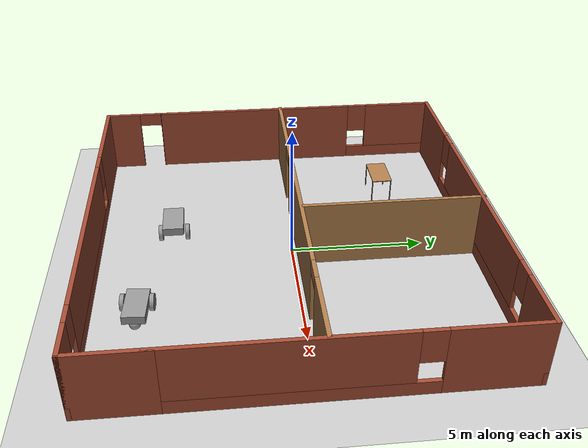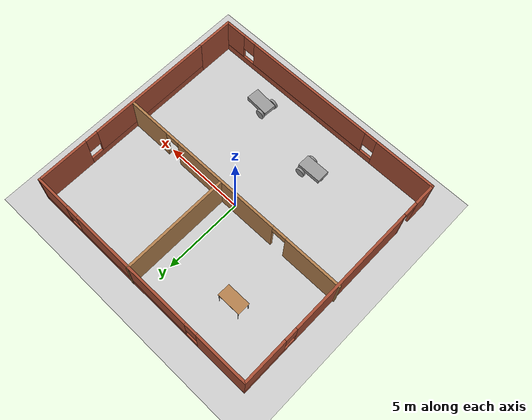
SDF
<sdf version="1.6">
 <world name="default">
  <light name="sun" type="directional">
   <pose>0 0 10 0 -0 0</pose>
   <diffuse>0.8 0.8 0.8 1</diffuse>
   <specular>0.2 0.2 0.2 1</specular>
   <attenuation>
    <range>1000</range>
    <constant>0.9</constant>
    <linear>0.01</linear>
    <quadratic>0.001</quadratic>
   </attenuation>
   <direction>-0.5 0.1 -0.9</direction>
  </light>
  <model name="ground_plane">
   <static>1</static>
   <link name="link">
    <collision name="collision">
     <geometry><plane><normal>0 0 1</normal><size>100 100</size></plane></geometry>
     <surface>
      <contact><collide_bitmask>65535</collide_bitmask></contact>
      <friction><ode><mu>100</mu><mu2>50</mu2></ode></friction>
     </surface>
    </collision>
    <visual name="visual">
     <cast_shadows>0</cast_shadows>
     <geometry><plane><normal>0 0 1</normal><size>100 100</size></plane></geometry>
     <material>
      <script><uri>file://media/materials/scripts/gazebo.material</uri><name>Gazebo/Grey</name></script>
     </material>
    </visual>
   </link>
  </model>
  <gravity>0 0 -9.8</gravity>
  <magnetic_field>6e-06 2.3e-05 -4.2e-05</magnetic_field>
  <atmosphere type="adiabatic"/>
  <physics name="default_physics" default="0" type="ode">
   <max_step_size>0.001</max_step_size>
   <real_time_factor>1</real_time_factor>
   <real_time_update_rate>1000</real_time_update_rate>
  </physics>
  <scene><ambient>0.4 0.4 0.4 1</ambient><background>0.7 0.7 0.7 1</background><shadows>1</shadows></scene>
  <audio><device>default</device></audio>
  <spherical_coordinates>
   <surface_model>EARTH_WGS84</surface_model>
   <latitude_deg>0</latitude_deg>
   <longitude_deg>0</longitude_deg>
   <elevation>0</elevation>
   <heading_deg>0</heading_deg>
  </spherical_coordinates>
  <model name="Floor_Building">
   <pose>0.125427 -0.176286 0 0 -0 0</pose>
   <link name="Wall_37">
    <pose>-7.51344 1.15966 0 0 -0 1.5708</pose>
    <visual name="Wall_37_Visual_0">
     <pose>-1.84038 0 1.25 0 -0 0</pose>
     <geometry><box><size>8.31924 0.15 2.5</size></box></geometry>
     <material>
      <script><uri>file://media/materials/scripts/gazebo.material</uri><name>Gazebo/Bricks</name></script>
      <ambient>0.333333 0.666667 0 1</ambient>
     </material>
     <meta><layer>0</layer></meta>
    </visual>
    <collision name="Wall_37_Collision_0">
     <geometry><box><size>8.31924 0.15 2.5</size></box></geometry>
     <pose>-1.84038 0 1.25 0 -0 0</pose>
    </collision>
    <visual name="Wall_37_Visual_1">
     <pose>4.15962 0 0.25 0 -0 0</pose>
     <geometry><box><size>3.68076 0.15 0.5</size></box></geometry>
     <material>
      <script><uri>file://media/materials/scripts/gazebo.material</uri><name>Gazebo/Bricks</name></script>
      <ambient>0.333333 0.666667 0 1</ambient>
     </material>
     <meta><layer>0</layer></meta>
    </visual>
    <collision name="Wall_37_Collision_1">
     <geometry><box><size>3.68076 0.15 0.5</size></box></geometry>
     <pose>4.15962 0 0.25 0 -0 0</pose>
    </collision>
    <visual name="Wall_37_Visual_2">
     <pose>4.55962 0 1.5 0 -0 0</pose>
     <geometry><box><size>2.88076 0.15 2</size></box></geometry>
     <material>
      <script><uri>file://media/materials/scripts/gazebo.material</uri><name>Gazebo/Bricks</name></script>
      <ambient>0.333333 0.666667 0 1</ambient>
     </material>
     <meta><layer>0</layer></meta>
    </visual>
    <collision name="Wall_37_Collision_2">
     <geometry><box><size>2.88076 0.15 2</size></box></geometry>
     <pose>4.55962 0 1.5 0 -0 0</pose>
    </collision>
    <visual name="Wall_37_Visual_3">
     <pose>2.71924 0 1.9 0 -0 0</pose>
     <geometry><box><size>0.8 0.15 1.2</size></box></geometry>
     <material>
      <script><uri>file://media/materials/scripts/gazebo.material</uri><name>Gazebo/Bricks</name></script>
      <ambient>0.333333 0.666667 0 1</ambient>
     </material>
     <meta><layer>0</layer></meta>
    </visual>
    <collision name="Wall_37_Collision_3">
     <geometry><box><size>0.8 0.15 1.2</size></box></geometry>
     <pose>2.71924 0 1.9 0 -0 0</pose>
    </collision>
   </link>
   <link name="Wall_38">
    <pose>0.036555 7.08466 0 0 -0 0</pose>
    <visual name="Wall_38_Visual_0">
     <pose>-5.95958 0 1.25 0 -0 0</pose>
     <geometry><box><size>3.33084 0.15 2.5</size></box></geometry>
     <material>
      <script><uri>file://media/materials/scripts/gazebo.material</uri><name>Gazebo/Bricks</name></script>
      <ambient>0.996078 0.47451 0.0196078 1</ambient>
     </material>
     <meta><layer>0</layer></meta>
    </visual>
    <collision name="Wall_38_Collision_0">
     <geometry><box><size>3.33084 0.15 2.5</size></box></geometry>
     <pose>-5.95958 0 1.25 0 -0 0</pose>
    </collision>
    <visual name="Wall_38_Visual_1">
     <pose>1.66542 0 0.25 0 -0 0</pose>
     <geometry><box><size>11.9192 0.15 0.5</size></box></geometry>
     <material>
      <script><uri>file://media/materials/scripts/gazebo.material</uri><name>Gazebo/Bricks</name></script>
      <ambient>0.996078 0.47451 0.0196078 1</ambient>
     </material>
     <meta><layer>0</layer></meta>
    </visual>
    <collision name="Wall_38_Collision_1">
     <geometry><box><size>11.9192 0.15 0.5</size></box></geometry>
     <pose>1.66542 0 0.25 0 -0 0</pose>
    </collision>
    <visual name="Wall_38_Visual_2">
     <pose>0.520773 0 1.5 0 -0 0</pose>
     <geometry><box><size>8.02987 0.15 2</size></box></geometry>
     <material>
      <script><uri>file://media/materials/scripts/gazebo.material</uri><name>Gazebo/Bricks</name></script>
      <ambient>0.996078 0.47451 0.0196078 1</ambient>
     </material>
     <meta><layer>0</layer></meta>
    </visual>
    <collision name="Wall_38_Collision_2">
     <geometry><box><size>8.02987 0.15 2</size></box></geometry>
     <pose>0.520773 0 1.5 0 -0 0</pose>
    </collision>
    <visual name="Wall_38_Visual_3">
     <pose>6.48035 0 1.5 0 -0 0</pose>
     <geometry><box><size>2.28929 0.15 2</size></box></geometry>
     <material>
      <script><uri>file://media/materials/scripts/gazebo.material</uri><name>Gazebo/Bricks</name></script>
      <ambient>0.996078 0.47451 0.0196078 1</ambient>
     </material>
     <meta><layer>0</layer></meta>
    </visual>
    <collision name="Wall_38_Collision_3">
     <geometry><box><size>2.28929 0.15 2</size></box></geometry>
     <pose>6.48035 0 1.5 0 -0 0</pose>
    </collision>
    <visual name="Wall_38_Visual_4">
     <pose>-3.89416 0 1.9 0 -0 0</pose>
     <geometry><box><size>0.8 0.15 1.2</size></box></geometry>
     <material>
      <script><uri>file://media/materials/scripts/gazebo.material</uri><name>Gazebo/Bricks</name></script>
      <ambient>0.996078 0.47451 0.0196078 1</ambient>
     </material>
     <meta><layer>0</layer></meta>
    </visual>
    <collision name="Wall_38_Collision_4">
     <geometry><box><size>0.8 0.15 1.2</size></box></geometry>
     <pose>-3.89416 0 1.9 0 -0 0</pose>
    </collision>
    <visual name="Wall_38_Visual_5">
     <pose>4.93571 0 1.9 0 -0 0</pose>
     <geometry><box><size>0.8 0.15 1.2</size></box></geometry>
     <material>
      <script><uri>file://media/materials/scripts/gazebo.material</uri><name>Gazebo/Bricks</name></script>
      <ambient>0.996078 0.47451 0.0196078 1</ambient>
     </material>
     <meta><layer>0</layer></meta>
    </visual>
    <collision name="Wall_38_Collision_5">
     <geometry><box><size>0.8 0.15 1.2</size></box></geometry>
     <pose>4.93571 0 1.9 0 -0 0</pose>
    </collision>
   </link>
   <link name="Wall_40">
    <pose>7.58655 1.15966 0 0 0 -1.5708</pose>
    <visual name="Wall_40_Visual_0">
     <pose>-4.36614 0 1.25 0 -0 0</pose>
     <geometry><box><size>3.26773 0.15 2.5</size></box></geometry>
     <material>
      <script><uri>file://media/materials/scripts/gazebo.material</uri><name>Gazebo/Bricks</name></script>
      <ambient>0.333333 0.666667 0 1</ambient>
     </material>
     <meta><layer>0</layer></meta>
    </visual>
    <collision name="Wall_40_Collision_0">
     <geometry><box><size>3.26773 0.15 2.5</size></box></geometry>
     <pose>-4.36614 0 1.25 0 -0 0</pose>
    </collision>
    <visual name="Wall_40_Visual_1">
     <pose>1.63386 0 0.25 0 -0 0</pose>
     <geometry><box><size>8.73227 0.15 0.5</size></box></geometry>
     <material>
      <script><uri>file://media/materials/scripts/gazebo.material</uri><name>Gazebo/Bricks</name></script>
      <ambient>0.333333 0.666667 0 1</ambient>
     </material>
     <meta><layer>0</layer></meta>
    </visual>
    <collision name="Wall_40_Collision_1">
     <geometry><box><size>8.73227 0.15 0.5</size></box></geometry>
     <pose>1.63386 0 0.25 0 -0 0</pose>
    </collision>
    <visual name="Wall_40_Visual_2">
     <pose>2.03386 0 1.5 0 -0 0</pose>
     <geometry><box><size>7.93227 0.15 2</size></box></geometry>
     <material>
      <script><uri>file://media/materials/scripts/gazebo.material</uri><name>Gazebo/Bricks</name></script>
      <ambient>0.333333 0.666667 0 1</ambient>
     </material>
     <meta><layer>0</layer></meta>
    </visual>
    <collision name="Wall_40_Collision_2">
     <geometry><box><size>7.93227 0.15 2</size></box></geometry>
     <pose>2.03386 0 1.5 0 -0 0</pose>
    </collision>
    <visual name="Wall_40_Visual_3">
     <pose>-2.33227 0 1.9 0 -0 0</pose>
     <geometry><box><size>0.8 0.15 1.2</size></box></geometry>
     <material>
      <script><uri>file://media/materials/scripts/gazebo.material</uri><name>Gazebo/Bricks</name></script>
      <ambient>0.333333 0.666667 0 1</ambient>
     </material>
     <meta><layer>0</layer></meta>
    </visual>
    <collision name="Wall_40_Collision_3">
     <geometry><box><size>0.8 0.15 1.2</size></box></geometry>
     <pose>-2.33227 0 1.9 0 -0 0</pose>
    </collision>
   </link>
   <link name="Wall_42">
    <pose>-7.51344 -5.94034 0 0 0 -1.5708</pose>
    <visual name="Wall_42_Visual_0">
     <pose>-1.16879 0 1.25 0 -0 0</pose>
     <geometry><box><size>0.162417 0.15 2.5</size></box></geometry>
     <material>
      <script><uri>file://media/materials/scripts/gazebo.material</uri><name>Gazebo/Bricks</name></script>
      <ambient>0.333333 0.666667 0 1</ambient>
     </material>
     <meta><layer>0</layer></meta>
    </visual>
    <collision name="Wall_42_Collision_0">
     <geometry><box><size>0.162417 0.15 2.5</size></box></geometry>
     <pose>-1.16879 0 1.25 0 -0 0</pose>
    </collision>
    <visual name="Wall_42_Visual_1">
     <pose>0.531208 0 1.25 0 -0 0</pose>
     <geometry><box><size>1.43758 0.15 2.5</size></box></geometry>
     <material>
      <script><uri>file://media/materials/scripts/gazebo.material</uri><name>Gazebo/Bricks</name></script>
      <ambient>0.333333 0.666667 0 1</ambient>
     </material>
     <meta><layer>0</layer></meta>
    </visual>
    <collision name="Wall_42_Collision_1">
     <geometry><box><size>1.43758 0.15 2.5</size></box></geometry>
     <pose>0.531208 0 1.25 0 -0 0</pose>
    </collision>
    <visual name="Wall_42_Visual_2">
     <pose>-0.637583 0 2.25 0 -0 0</pose>
     <geometry><box><size>0.9 0.15 0.5</size></box></geometry>
     <material>
      <script><uri>file://media/materials/scripts/gazebo.material</uri><name>Gazebo/Bricks</name></script>
      <ambient>0.333333 0.666667 0 1</ambient>
     </material>
     <meta><layer>0</layer></meta>
    </visual>
    <collision name="Wall_42_Collision_2">
     <geometry><box><size>0.9 0.15 0.5</size></box></geometry>
     <pose>-0.637583 0 2.25 0 -0 0</pose>
    </collision>
   </link>
   <link name="Wall_43">
    <pose>0.036555 -7.11534 0 0 -0 0</pose>
    <visual name="Wall_43_Visual_0">
     <pose>-5.69574 0 1.25 0 -0 0</pose>
     <geometry><box><size>3.85852 0.15 2.5</size></box></geometry>
     <material>
      <script><uri>file://media/materials/scripts/gazebo.material</uri><name>Gazebo/Bricks</name></script>
      <ambient>0.333333 0.666667 0 1</ambient>
     </material>
     <meta><layer>0</layer></meta>
    </visual>
    <collision name="Wall_43_Collision_0">
     <geometry><box><size>3.85852 0.15 2.5</size></box></geometry>
     <pose>-5.69574 0 1.25 0 -0 0</pose>
    </collision>
    <visual name="Wall_43_Visual_1">
     <pose>1.92926 0 0.25 0 -0 0</pose>
     <geometry><box><size>11.3915 0.15 0.5</size></box></geometry>
     <material>
      <script><uri>file://media/materials/scripts/gazebo.material</uri><name>Gazebo/Bricks</name></script>
      <ambient>0.333333 0.666667 0 1</ambient>
     </material>
     <meta><layer>0</layer></meta>
    </visual>
    <collision name="Wall_43_Collision_1">
     <geometry><box><size>11.3915 0.15 0.5</size></box></geometry>
     <pose>1.92926 0 0.25 0 -0 0</pose>
    </collision>
    <visual name="Wall_43_Visual_2">
     <pose>1.20676 0 1.5 0 -0 0</pose>
     <geometry><box><size>8.34648 0.15 2</size></box></geometry>
     <material>
      <script><uri>file://media/materials/scripts/gazebo.material</uri><name>Gazebo/Bricks</name></script>
      <ambient>0.333333 0.666667 0 1</ambient>
     </material>
     <meta><layer>0</layer></meta>
    </visual>
    <collision name="Wall_43_Collision_2">
     <geometry><box><size>8.34648 0.15 2</size></box></geometry>
     <pose>1.20676 0 1.5 0 -0 0</pose>
    </collision>
    <visual name="Wall_43_Visual_3">
     <pose>6.9025 0 1.5 0 -0 0</pose>
     <geometry><box><size>1.445 0.15 2</size></box></geometry>
     <material>
      <script><uri>file://media/materials/scripts/gazebo.material</uri><name>Gazebo/Bricks</name></script>
      <ambient>0.333333 0.666667 0 1</ambient>
     </material>
     <meta><layer>0</layer></meta>
    </visual>
    <collision name="Wall_43_Collision_3">
     <geometry><box><size>1.445 0.15 2</size></box></geometry>
     <pose>6.9025 0 1.5 0 -0 0</pose>
    </collision>
    <visual name="Wall_43_Visual_4">
     <pose>-3.36648 0 1.9 0 -0 0</pose>
     <geometry><box><size>0.8 0.15 1.2</size></box></geometry>
     <material>
      <script><uri>file://media/materials/scripts/gazebo.material</uri><name>Gazebo/Bricks</name></script>
      <ambient>0.333333 0.666667 0 1</ambient>
     </material>
     <meta><layer>0</layer></meta>
    </visual>
    <collision name="Wall_43_Collision_4">
     <geometry><box><size>0.8 0.15 1.2</size></box></geometry>
     <pose>-3.36648 0 1.9 0 -0 0</pose>
    </collision>
    <visual name="Wall_43_Visual_5">
     <pose>5.78 0 1.9 0 -0 0</pose>
     <geometry><box><size>0.8 0.15 1.2</size></box></geometry>
     <material>
      <script><uri>file://media/materials/scripts/gazebo.material</uri><name>Gazebo/Bricks</name></script>
      <ambient>0.333333 0.666667 0 1</ambient>
     </material>
     <meta><layer>0</layer></meta>
    </visual>
    <collision name="Wall_43_Collision_5">
     <geometry><box><size>0.8 0.15 1.2</size></box></geometry>
     <pose>5.78 0 1.9 0 -0 0</pose>
    </collision>
   </link>
   <link name="Wall_44">
    <collision name="Wall_44_Collision">
     <geometry><box><size>2.75 0.15 2.5</size></box></geometry>
     <pose>0 0 1.25 0 -0 0</pose>
    </collision>
    <visual name="Wall_44_Visual">
     <pose>0 0 1.25 0 -0 0</pose>
     <geometry><box><size>2.75 0.15 2.5</size></box></geometry>
     <material>
      <script><uri>file://media/materials/scripts/gazebo.material</uri><name>Gazebo/Bricks</name></script>
      <ambient>0.333333 0.666667 0 1</ambient>
     </material>
     <meta><layer>0</layer></meta>
    </visual>
    <pose>7.58655 -5.81534 0 0 -0 1.5708</pose>
   </link>
   <link name="Wall_51">
    <pose>-0.036556 0.431378 0 0 -0 0</pose>
    <visual name="Wall_51_Visual_0">
     <pose>-5.78972 0 1.25 0 -0 0</pose>
     <geometry><box><size>3.67056 0.15 2.5</size></box></geometry>
     <material>
      <script><uri>file://media/materials/scripts/gazebo.material</uri><name>Gazebo/Wood</name></script>
      <ambient>0.435294 0.796078 0.67451 1</ambient>
     </material>
     <meta><layer>0</layer></meta>
    </visual>
    <collision name="Wall_51_Collision_0">
     <geometry><box><size>3.67056 0.15 2.5</size></box></geometry>
     <pose>-5.78972 0 1.25 0 -0 0</pose>
    </collision>
    <visual name="Wall_51_Visual_1">
     <pose>0.453168 0 1.25 0 -0 0</pose>
     <geometry><box><size>7.01522 0.15 2.5</size></box></geometry>
     <material>
      <script><uri>file://media/materials/scripts/gazebo.material</uri><name>Gazebo/Wood</name></script>
      <ambient>0.435294 0.796078 0.67451 1</ambient>
     </material>
     <meta><layer>0</layer></meta>
    </visual>
    <collision name="Wall_51_Collision_1">
     <geometry><box><size>7.01522 0.15 2.5</size></box></geometry>
     <pose>0.453168 0 1.25 0 -0 0</pose>
    </collision>
    <visual name="Wall_51_Visual_2">
     <pose>6.24289 0 1.25 0 -0 0</pose>
     <geometry><box><size>2.76422 0.15 2.5</size></box></geometry>
     <material>
      <script><uri>file://media/materials/scripts/gazebo.material</uri><name>Gazebo/Wood</name></script>
      <ambient>0.435294 0.796078 0.67451 1</ambient>
     </material>
     <meta><layer>0</layer></meta>
    </visual>
    <collision name="Wall_51_Collision_2">
     <geometry><box><size>2.76422 0.15 2.5</size></box></geometry>
     <pose>6.24289 0 1.25 0 -0 0</pose>
    </collision>
    <visual name="Wall_51_Visual_3">
     <pose>-3.50444 0 2.25 0 -0 0</pose>
     <geometry><box><size>0.9 0.15 0.5</size></box></geometry>
     <material>
      <script><uri>file://media/materials/scripts/gazebo.material</uri><name>Gazebo/Wood</name></script>
      <ambient>0.435294 0.796078 0.67451 1</ambient>
     </material>
     <meta><layer>0</layer></meta>
    </visual>
    <collision name="Wall_51_Collision_3">
     <geometry><box><size>0.9 0.15 0.5</size></box></geometry>
     <pose>-3.50444 0 2.25 0 -0 0</pose>
    </collision>
    <visual name="Wall_51_Visual_4">
     <pose>4.41078 0 2.25 0 -0 0</pose>
     <geometry><box><size>0.9 0.15 0.5</size></box></geometry>
     <material>
      <script><uri>file://media/materials/scripts/gazebo.material</uri><name>Gazebo/Wood</name></script>
      <ambient>0.435294 0.796078 0.67451 1</ambient>
     </material>
     <meta><layer>0</layer></meta>
    </visual>
    <collision name="Wall_51_Collision_4">
     <geometry><box><size>0.9 0.15 0.5</size></box></geometry>
     <pose>4.41078 0 2.25 0 -0 0</pose>
    </collision>
   </link>
   <link name="Wall_53">
    <collision name="Wall_53_Collision">
     <geometry><box><size>6.75 0.15 2.5</size></box></geometry>
     <pose>0 0 1.25 0 -0 0</pose>
    </collision>
    <visual name="Wall_53_Visual">
     <pose>0 0 1.25 0 -0 0</pose>
     <geometry><box><size>6.75 0.15 2.5</size></box></geometry>
     <material>
      <script><uri>file://media/materials/scripts/gazebo.material</uri><name>Gazebo/Wood</name></script>
      <ambient>0.435294 0.796078 0.67451 1</ambient>
     </material>
     <meta><layer>0</layer></meta>
    </visual>
    <pose>0.645275 3.81534 0 0 0 -1.5708</pose>
   </link>
   <static>1</static>
  </model>
  <model name="mobile_robot_1">
   <link name="link_0">
    <pose>0 0 0.5 0 -0 0</pose>
    <inertial>
     <mass>1</mass>
     <inertia>
      <ixx>0.166667</ixx>
      <ixy>0</ixy>
      <ixz>0</ixz>
      <iyy>0.166667</iyy>
      <iyz>0</iyz>
      <izz>0.166667</izz>
     </inertia>
    </inertial>
    <visual name="visual">
     <geometry><box><size>1.5 0.8 0.3</size></box></geometry>
     <material>
      <lighting>1</lighting>
      <script><uri>file://media/materials/scripts/gazebo.material</uri><name>Gazebo/Grey</name></script>
      <shader type="pixel"><normal_map>__default__</normal_map></shader>
      <ambient>0.3 0.3 0.3 1</ambient>
      <diffuse>0.7 0.7 0.7 1</diffuse>
      <specular>0.01 0.01 0.01 1</specular>
      <emissive>0 0 0 1</emissive>
     </material>
    </visual>
    <collision name="collision">
     <geometry><box><size>1.5 0.8 0.3</size></box></geometry>
     <surface>
      <friction>
       <ode><mu>1</mu><mu2>1</mu2><fdir1>0 0 0</fdir1><slip1>0</slip1><slip2>0</slip2></ode>
       <torsional>
        <coefficient>1</coefficient>
        <patch_radius>0</patch_radius>
        <surface_radius>0</surface_radius>
        <use_patch_radius>1</use_patch_radius>
        <ode><slip>0</slip></ode>
       </torsional>
      </friction>
      <bounce><restitution_coefficient>0</restitution_coefficient><threshold>1e+06</threshold></bounce>
      <contact>
       <collide_without_contact>0</collide_without_contact>
       <collide_without_contact_bitmask>1</collide_without_contact_bitmask>
       <collide_bitmask>1</collide_bitmask>
       <ode>
        <soft_cfm>0</soft_cfm>
        <soft_erp>0.2</soft_erp>
        <kp>1e+13</kp>
        <kd>1</kd>
        <max_vel>0.01</max_vel>
        <min_depth>0</min_depth>
       </ode>
       <bullet>
        <split_impulse>1</split_impulse>
        <split_impulse_penetration_threshold>-0.01</split_impulse_penetration_threshold>
        <soft_cfm>0</soft_cfm>
        <soft_erp>0.2</soft_erp>
        <kp>1e+13</kp>
        <kd>1</kd>
       </bullet>
      </contact>
     </surface>
    </collision>
   </link>
   <link name="link_1">
    <pose>0.45 0.540029 0.3 1.5707 -0 0</pose>
    <inertial>
     <mass>1</mass>
     <inertia><ixx>0.145833</ixx><ixy>0</ixy><ixz>0</ixz><iyy>0.145833</iyy><iyz>0</iyz><izz>0.125</izz></inertia>
    </inertial>
    <visual name="visual">
     <geometry><cylinder><radius>0.3</radius><length>0.15</length></cylinder></geometry>
     <material>
      <lighting>1</lighting>
      <script><uri>file://media/materials/scripts/gazebo.material</uri><name>Gazebo/Grey</name></script>
      <shader type="pixel"><normal_map>__default__</normal_map></shader>
      <ambient>0.3 0.3 0.3 1</ambient>
      <diffuse>0.7 0.7 0.7 1</diffuse>
      <specular>0.01 0.01 0.01 1</specular>
      <emissive>0 0 0 1</emissive>
     </material>
    </visual>
    <collision name="collision">
     <geometry><cylinder><radius>0.3</radius><length>0.15</length></cylinder></geometry>
     <surface>
      <friction>
       <ode><mu>1</mu><mu2>1</mu2><fdir1>0 0 0</fdir1><slip1>0</slip1><slip2>0</slip2></ode>
       <torsional>
        <coefficient>1</coefficient>
        <patch_radius>0</patch_radius>
        <surface_radius>0</surface_radius>
        <use_patch_radius>1</use_patch_radius>
        <ode><slip>0</slip></ode>
       </torsional>
      </friction>
      <bounce><restitution_coefficient>0</restitution_coefficient><threshold>1e+06</threshold></bounce>
      <contact>
       <collide_without_contact>0</collide_without_contact>
       <collide_without_contact_bitmask>1</collide_without_contact_bitmask>
       <collide_bitmask>1</collide_bitmask>
       <ode>
        <soft_cfm>0</soft_cfm>
        <soft_erp>0.2</soft_erp>
        <kp>1e+13</kp>
        <kd>1</kd>
        <max_vel>0.01</max_vel>
        <min_depth>0</min_depth>
       </ode>
       <bullet>
        <split_impulse>1</split_impulse>
        <split_impulse_penetration_threshold>-0.01</split_impulse_penetration_threshold>
        <soft_cfm>0</soft_cfm>
        <soft_erp>0.2</soft_erp>
        <kp>1e+13</kp>
        <kd>1</kd>
       </bullet>
      </contact>
     </surface>
    </collision>
   </link>
   <link name="link_1_clone">
    <pose>0.45 -0.475029 0.3 1.5707 -0 0</pose>
    <inertial>
     <mass>1</mass>
     <inertia><ixx>0.145833</ixx><ixy>0</ixy><ixz>0</ixz><iyy>0.145833</iyy><iyz>0</iyz><izz>0.125</izz></inertia>
    </inertial>
    <visual name="visual">
     <geometry><cylinder><radius>0.3</radius><length>0.15</length></cylinder></geometry>
     <material>
      <lighting>1</lighting>
      <script><uri>file://media/materials/scripts/gazebo.material</uri><name>Gazebo/Grey</name></script>
      <shader type="pixel"><normal_map>__default__</normal_map></shader>
      <ambient>0.3 0.3 0.3 1</ambient>
      <diffuse>0.7 0.7 0.7 1</diffuse>
      <specular>0.01 0.01 0.01 1</specular>
      <emissive>0 0 0 1</emissive>
     </material>
    </visual>
    <collision name="collision">
     <geometry><cylinder><radius>0.3</radius><length>0.15</length></cylinder></geometry>
     <surface>
      <friction>
       <ode><mu>1</mu><mu2>1</mu2><fdir1>0 0 0</fdir1><slip1>0</slip1><slip2>0</slip2></ode>
       <torsional>
        <coefficient>1</coefficient>
        <patch_radius>0</patch_radius>
        <surface_radius>0</surface_radius>
        <use_patch_radius>1</use_patch_radius>
        <ode><slip>0</slip></ode>
       </torsional>
      </friction>
      <bounce><restitution_coefficient>0</restitution_coefficient><threshold>1e+06</threshold></bounce>
      <contact>
       <collide_without_contact>0</collide_without_contact>
       <collide_without_contact_bitmask>1</collide_without_contact_bitmask>
       <collide_bitmask>1</collide_bitmask>
       <ode>
        <soft_cfm>0</soft_cfm>
        <soft_erp>0.2</soft_erp>
        <kp>1e+13</kp>
        <kd>1</kd>
        <max_vel>0.01</max_vel>
        <min_depth>0</min_depth>
       </ode>
       <bullet>
        <split_impulse>1</split_impulse>
        <split_impulse_penetration_threshold>-0.01</split_impulse_penetration_threshold>
        <soft_cfm>0</soft_cfm>
        <soft_erp>0.2</soft_erp>
        <kp>1e+13</kp>
        <kd>1</kd>
       </bullet>
      </contact>
     </surface>
    </collision>
   </link>
   <link name="link_2">
    <pose>-0.55 0 0.2 0 -0 0</pose>
    <inertial>
     <mass>1</mass>
     <inertia><ixx>0.1</ixx><ixy>0</ixy><ixz>0</ixz><iyy>0.1</iyy><iyz>0</iyz><izz>0.1</izz></inertia>
    </inertial>
    <visual name="visual">
     <geometry><sphere><radius>0.2</radius></sphere></geometry>
     <material>
      <lighting>1</lighting>
      <script><uri>file://media/materials/scripts/gazebo.material</uri><name>Gazebo/Grey</name></script>
      <shader type="pixel"><normal_map>__default__</normal_map></shader>
      <ambient>0.3 0.3 0.3 1</ambient>
      <diffuse>0.7 0.7 0.7 1</diffuse>
      <specular>0.01 0.01 0.01 1</specular>
      <emissive>0 0 0 1</emissive>
     </material>
    </visual>
    <collision name="collision">
     <geometry><sphere><radius>0.2</radius></sphere></geometry>
     <surface>
      <friction>
       <ode><mu>1</mu><mu2>1</mu2><fdir1>0 0 0</fdir1><slip1>0</slip1><slip2>0</slip2></ode>
       <torsional>
        <coefficient>1</coefficient>
        <patch_radius>0</patch_radius>
        <surface_radius>0</surface_radius>
        <use_patch_radius>1</use_patch_radius>
        <ode><slip>0</slip></ode>
       </torsional>
      </friction>
      <bounce><restitution_coefficient>0</restitution_coefficient><threshold>1e+06</threshold></bounce>
      <contact>
       <collide_without_contact>0</collide_without_contact>
       <collide_without_contact_bitmask>1</collide_without_contact_bitmask>
       <collide_bitmask>1</collide_bitmask>
       <ode>
        <soft_cfm>0</soft_cfm>
        <soft_erp>0.2</soft_erp>
        <kp>1e+13</kp>
        <kd>1</kd>
        <max_vel>0.01</max_vel>
        <min_depth>0</min_depth>
       </ode>
       <bullet>
        <split_impulse>1</split_impulse>
        <split_impulse_penetration_threshold>-0.01</split_impulse_penetration_threshold>
        <soft_cfm>0</soft_cfm>
        <soft_erp>0.2</soft_erp>
        <kp>1e+13</kp>
        <kd>1</kd>
       </bullet>
      </contact>
     </surface>
    </collision>
   </link>
   <joint name="link_0_JOINT_0" type="revolute">
    <parent>link_0</parent>
    <child>link_1</child>
    <axis>
     <xyz>0 0 1</xyz>
     <use_parent_model_frame>0</use_parent_model_frame>
     <limit>
      <lower>-1.79769e+308</lower>
      <upper>1.79769e+308</upper>
      <effort>-1</effort>
      <velocity>-1</velocity>
     </limit>
     <dynamics>
      <spring_reference>0</spring_reference>
      <spring_stiffness>0</spring_stiffness>
      <damping>0</damping>
     </dynamics>
    </axis>
    <physics>
     <ode><limit><cfm>0</cfm><erp>0.2</erp></limit><suspension><cfm>0</cfm><erp>0.2</erp></suspension></ode>
    </physics>
   </joint>
   <joint name="link_0_JOINT_1" type="revolute">
    <parent>link_0</parent>
    <child>link_1_clone</child>
    <axis>
     <xyz>0 0 1</xyz>
     <use_parent_model_frame>0</use_parent_model_frame>
     <limit>
      <lower>-1.79769e+308</lower>
      <upper>1.79769e+308</upper>
      <effort>-1</effort>
      <velocity>-1</velocity>
     </limit>
     <dynamics>
      <spring_reference>0</spring_reference>
      <spring_stiffness>0</spring_stiffness>
      <damping>0</damping>
     </dynamics>
    </axis>
    <physics>
     <ode><limit><cfm>0</cfm><erp>0.2</erp></limit><suspension><cfm>0</cfm><erp>0.2</erp></suspension></ode>
    </physics>
   </joint>
   <joint name="link_0_JOINT_2" type="ball">
    <parent>link_0</parent>
    <child>link_2</child>
    <physics>
     <ode><limit><cfm>0</cfm><erp>0.2</erp></limit><suspension><cfm>0</cfm><erp>0.2</erp></suspension></ode>
    </physics>
   </joint>
   <static>0</static>
   <pose>-1.7217 -4.49046 0 0 -0 0</pose>
  </model>
  <model name="table">
   <static>1</static>
   <link name="link">
    <collision name="surface">
     <pose>0 0 1 0 -0 0</pose>
     <geometry><box><size>1.5 0.8 0.03</size></box></geometry>
     <surface><friction><ode><mu>0.6</mu><mu2>0.6</mu2></ode></friction></surface>
    </collision>
    <visual name="visual1">
     <pose>0 0 1 0 -0 0</pose>
     <geometry><box><size>1.5 0.8 0.03</size></box></geometry>
     <material>
      <script><uri>file://media/materials/scripts/gazebo.material</uri><name>Gazebo/Wood</name></script>
     </material>
    </visual>
    <collision name="front_left_leg">
     <pose>0.68 0.38 0.5 0 -0 0</pose>
     <geometry><cylinder><radius>0.02</radius><length>1</length></cylinder></geometry>
    </collision>
    <visual name="front_left_leg">
     <pose>0.68 0.38 0.5 0 -0 0</pose>
     <geometry><cylinder><radius>0.02</radius><length>1</length></cylinder></geometry>
     <material>
      <script><uri>file://media/materials/scripts/gazebo.material</uri><name>Gazebo/Grey</name></script>
     </material>
    </visual>
    <collision name="front_right_leg">
     <pose>0.68 -0.38 0.5 0 -0 0</pose>
     <geometry><cylinder><radius>0.02</radius><length>1</length></cylinder></geometry>
    </collision>
    <visual name="front_right_leg">
     <pose>0.68 -0.38 0.5 0 -0 0</pose>
     <geometry><cylinder><radius>0.02</radius><length>1</length></cylinder></geometry>
     <material>
      <script><uri>file://media/materials/scripts/gazebo.material</uri><name>Gazebo/Grey</name></script>
     </material>
    </visual>
    <collision name="back_right_leg">
     <pose>-0.68 -0.38 0.5 0 -0 0</pose>
     <geometry><cylinder><radius>0.02</radius><length>1</length></cylinder></geometry>
    </collision>
    <visual name="back_right_leg">
     <pose>-0.68 -0.38 0.5 0 -0 0</pose>
     <geometry><cylinder><radius>0.02</radius><length>1</length></cylinder></geometry>
     <material>
      <script><uri>file://media/materials/scripts/gazebo.material</uri><name>Gazebo/Grey</name></script>
     </material>
    </visual>
    <collision name="back_left_leg">
     <pose>-0.68 0.38 0.5 0 -0 0</pose>
     <geometry><cylinder><radius>0.02</radius><length>1</length></cylinder></geometry>
    </collision>
    <visual name="back_left_leg">
     <pose>-0.68 0.38 0.5 0 -0 0</pose>
     <geometry><cylinder><radius>0.02</radius><length>1</length></cylinder></geometry>
     <material>
      <script><uri>file://media/materials/scripts/gazebo.material</uri><name>Gazebo/Grey</name></script>
     </material>
    </visual>
   </link>
   <pose>-3.88965 4.10234 0 0 -0 0</pose>
  </model>
  <model name="mobile_robot_1_clone">
   <link name="link_0">
    <pose>0 0 0.5 0 -0 0</pose>
    <inertial>
     <mass>1</mass>
     <inertia>
      <ixx>0.166667</ixx>
      <ixy>0</ixy>
      <ixz>0</ixz>
      <iyy>0.166667</iyy>
      <iyz>0</iyz>
      <izz>0.166667</izz>
     </inertia>
    </inertial>
    <visual name="visual">
     <geometry><box><size>1.5 0.8 0.3</size></box></geometry>
     <material>
      <lighting>1</lighting>
      <script><uri>file://media/materials/scripts/gazebo.material</uri><name>Gazebo/Grey</name></script>
      <shader type="pixel"><normal_map>__default__</normal_map></shader>
      <ambient>0.3 0.3 0.3 1</ambient>
      <diffuse>0.7 0.7 0.7 1</diffuse>
      <specular>0.01 0.01 0.01 1</specular>
      <emissive>0 0 0 1</emissive>
     </material>
    </visual>
    <collision name="collision">
     <geometry><box><size>1.5 0.8 0.3</size></box></geometry>
     <surface>
      <friction>
       <ode><mu>1</mu><mu2>1</mu2><fdir1>0 0 0</fdir1><slip1>0</slip1><slip2>0</slip2></ode>
       <torsional>
        <coefficient>1</coefficient>
        <patch_radius>0</patch_radius>
        <surface_radius>0</surface_radius>
        <use_patch_radius>1</use_patch_radius>
        <ode><slip>0</slip></ode>
       </torsional>
      </friction>
      <bounce><restitution_coefficient>0</restitution_coefficient><threshold>1e+06</threshold></bounce>
      <contact>
       <collide_without_contact>0</collide_without_contact>
       <collide_without_contact_bitmask>1</collide_without_contact_bitmask>
       <collide_bitmask>1</collide_bitmask>
       <ode>
        <soft_cfm>0</soft_cfm>
        <soft_erp>0.2</soft_erp>
        <kp>1e+13</kp>
        <kd>1</kd>
        <max_vel>0.01</max_vel>
        <min_depth>0</min_depth>
       </ode>
       <bullet>
        <split_impulse>1</split_impulse>
        <split_impulse_penetration_threshold>-0.01</split_impulse_penetration_threshold>
        <soft_cfm>0</soft_cfm>
        <soft_erp>0.2</soft_erp>
        <kp>1e+13</kp>
        <kd>1</kd>
       </bullet>
      </contact>
     </surface>
    </collision>
   </link>
   <link name="link_1">
    <pose>0.45 0.540029 0.3 1.5707 -0 0</pose>
    <inertial>
     <mass>1</mass>
     <inertia><ixx>0.145833</ixx><ixy>0</ixy><ixz>0</ixz><iyy>0.145833</iyy><iyz>0</iyz><izz>0.125</izz></inertia>
    </inertial>
    <visual name="visual">
     <geometry><cylinder><radius>0.3</radius><length>0.15</length></cylinder></geometry>
     <material>
      <lighting>1</lighting>
      <script><uri>file://media/materials/scripts/gazebo.material</uri><name>Gazebo/Grey</name></script>
      <shader type="pixel"><normal_map>__default__</normal_map></shader>
      <ambient>0.3 0.3 0.3 1</ambient>
      <diffuse>0.7 0.7 0.7 1</diffuse>
      <specular>0.01 0.01 0.01 1</specular>
      <emissive>0 0 0 1</emissive>
     </material>
    </visual>
    <collision name="collision">
     <geometry><cylinder><radius>0.3</radius><length>0.15</length></cylinder></geometry>
     <surface>
      <friction>
       <ode><mu>1</mu><mu2>1</mu2><fdir1>0 0 0</fdir1><slip1>0</slip1><slip2>0</slip2></ode>
       <torsional>
        <coefficient>1</coefficient>
        <patch_radius>0</patch_radius>
        <surface_radius>0</surface_radius>
        <use_patch_radius>1</use_patch_radius>
        <ode><slip>0</slip></ode>
       </torsional>
      </friction>
      <bounce><restitution_coefficient>0</restitution_coefficient><threshold>1e+06</threshold></bounce>
      <contact>
       <collide_without_contact>0</collide_without_contact>
       <collide_without_contact_bitmask>1</collide_without_contact_bitmask>
       <collide_bitmask>1</collide_bitmask>
       <ode>
        <soft_cfm>0</soft_cfm>
        <soft_erp>0.2</soft_erp>
        <kp>1e+13</kp>
        <kd>1</kd>
        <max_vel>0.01</max_vel>
        <min_depth>0</min_depth>
       </ode>
       <bullet>
        <split_impulse>1</split_impulse>
        <split_impulse_penetration_threshold>-0.01</split_impulse_penetration_threshold>
        <soft_cfm>0</soft_cfm>
        <soft_erp>0.2</soft_erp>
        <kp>1e+13</kp>
        <kd>1</kd>
       </bullet>
      </contact>
     </surface>
    </collision>
   </link>
   <link name="link_1_clone">
    <pose>0.45 -0.475029 0.3 1.5707 -0 0</pose>
    <inertial>
     <mass>1</mass>
     <inertia><ixx>0.145833</ixx><ixy>0</ixy><ixz>0</ixz><iyy>0.145833</iyy><iyz>0</iyz><izz>0.125</izz></inertia>
    </inertial>
    <visual name="visual">
     <geometry><cylinder><radius>0.3</radius><length>0.15</length></cylinder></geometry>
     <material>
      <lighting>1</lighting>
      <script><uri>file://media/materials/scripts/gazebo.material</uri><name>Gazebo/Grey</name></script>
      <shader type="pixel"><normal_map>__default__</normal_map></shader>
      <ambient>0.3 0.3 0.3 1</ambient>
      <diffuse>0.7 0.7 0.7 1</diffuse>
      <specular>0.01 0.01 0.01 1</specular>
      <emissive>0 0 0 1</emissive>
     </material>
    </visual>
    <collision name="collision">
     <geometry><cylinder><radius>0.3</radius><length>0.15</length></cylinder></geometry>
     <surface>
      <friction>
       <ode><mu>1</mu><mu2>1</mu2><fdir1>0 0 0</fdir1><slip1>0</slip1><slip2>0</slip2></ode>
       <torsional>
        <coefficient>1</coefficient>
        <patch_radius>0</patch_radius>
        <surface_radius>0</surface_radius>
        <use_patch_radius>1</use_patch_radius>
        <ode><slip>0</slip></ode>
       </torsional>
      </friction>
      <bounce><restitution_coefficient>0</restitution_coefficient><threshold>1e+06</threshold></bounce>
      <contact>
       <collide_without_contact>0</collide_without_contact>
       <collide_without_contact_bitmask>1</collide_without_contact_bitmask>
       <collide_bitmask>1</collide_bitmask>
       <ode>
        <soft_cfm>0</soft_cfm>
        <soft_erp>0.2</soft_erp>
        <kp>1e+13</kp>
        <kd>1</kd>
        <max_vel>0.01</max_vel>
        <min_depth>0</min_depth>
       </ode>
       <bullet>
        <split_impulse>1</split_impulse>
        <split_impulse_penetration_threshold>-0.01</split_impulse_penetration_threshold>
        <soft_cfm>0</soft_cfm>
        <soft_erp>0.2</soft_erp>
        <kp>1e+13</kp>
        <kd>1</kd>
       </bullet>
      </contact>
     </surface>
    </collision>
   </link>
   <link name="link_2">
    <pose>-0.55 0 0.2 0 -0 0</pose>
    <inertial>
     <mass>1</mass>
     <inertia><ixx>0.1</ixx><ixy>0</ixy><ixz>0</ixz><iyy>0.1</iyy><iyz>0</iyz><izz>0.1</izz></inertia>
    </inertial>
    <visual name="visual">
     <geometry><sphere><radius>0.2</radius></sphere></geometry>
     <material>
      <lighting>1</lighting>
      <script><uri>file://media/materials/scripts/gazebo.material</uri><name>Gazebo/Grey</name></script>
      <shader type="pixel"><normal_map>__default__</normal_map></shader>
      <ambient>0.3 0.3 0.3 1</ambient>
      <diffuse>0.7 0.7 0.7 1</diffuse>
      <specular>0.01 0.01 0.01 1</specular>
      <emissive>0 0 0 1</emissive>
     </material>
    </visual>
    <collision name="collision">
     <geometry><sphere><radius>0.2</radius></sphere></geometry>
     <surface>
      <friction>
       <ode><mu>1</mu><mu2>1</mu2><fdir1>0 0 0</fdir1><slip1>0</slip1><slip2>0</slip2></ode>
       <torsional>
        <coefficient>1</coefficient>
        <patch_radius>0</patch_radius>
        <surface_radius>0</surface_radius>
        <use_patch_radius>1</use_patch_radius>
        <ode><slip>0</slip></ode>
       </torsional>
      </friction>
      <bounce><restitution_coefficient>0</restitution_coefficient><threshold>1e+06</threshold></bounce>
      <contact>
       <collide_without_contact>0</collide_without_contact>
       <collide_without_contact_bitmask>1</collide_without_contact_bitmask>
       <collide_bitmask>1</collide_bitmask>
       <ode>
        <soft_cfm>0</soft_cfm>
        <soft_erp>0.2</soft_erp>
        <kp>1e+13</kp>
        <kd>1</kd>
        <max_vel>0.01</max_vel>
        <min_depth>0</min_depth>
       </ode>
       <bullet>
        <split_impulse>1</split_impulse>
        <split_impulse_penetration_threshold>-0.01</split_impulse_penetration_threshold>
        <soft_cfm>0</soft_cfm>
        <soft_erp>0.2</soft_erp>
        <kp>1e+13</kp>
        <kd>1</kd>
       </bullet>
      </contact>
     </surface>
    </collision>
   </link>
   <joint name="link_0_JOINT_0" type="revolute">
    <parent>link_0</parent>
    <child>link_1</child>
    <axis>
     <xyz>0 0 1</xyz>
     <use_parent_model_frame>0</use_parent_model_frame>
     <limit>
      <lower>-1.79769e+308</lower>
      <upper>1.79769e+308</upper>
      <effort>-1</effort>
      <velocity>-1</velocity>
     </limit>
     <dynamics>
      <spring_reference>0</spring_reference>
      <spring_stiffness>0</spring_stiffness>
      <damping>0</damping>
     </dynamics>
    </axis>
    <physics>
     <ode><limit><cfm>0</cfm><erp>0.2</erp></limit><suspension><cfm>0</cfm><erp>0.2</erp></suspension></ode>
    </physics>
   </joint>
   <joint name="link_0_JOINT_1" type="revolute">
    <parent>link_0</parent>
    <child>link_1_clone</child>
    <axis>
     <xyz>0 0 1</xyz>
     <use_parent_model_frame>0</use_parent_model_frame>
     <limit>
      <lower>-1.79769e+308</lower>
      <upper>1.79769e+308</upper>
      <effort>-1</effort>
      <velocity>-1</velocity>
     </limit>
     <dynamics>
      <spring_reference>0</spring_reference>
      <spring_stiffness>0</spring_stiffness>
      <damping>0</damping>
     </dynamics>
    </axis>
    <physics>
     <ode><limit><cfm>0</cfm><erp>0.2</erp></limit><suspension><cfm>0</cfm><erp>0.2</erp></suspension></ode>
    </physics>
   </joint>
   <joint name="link_0_JOINT_2" type="ball">
    <parent>link_0</parent>
    <child>link_2</child>
    <physics>
     <ode><limit><cfm>0</cfm><erp>0.2</erp></limit><suspension><cfm>0</cfm><erp>0.2</erp></suspension></ode>
    </physics>
   </joint>
   <static>0</static>
   <pose>3.36041 -5.61431 0 0 -0 3.0715</pose>
  </model>
 </world>
</sdf>
